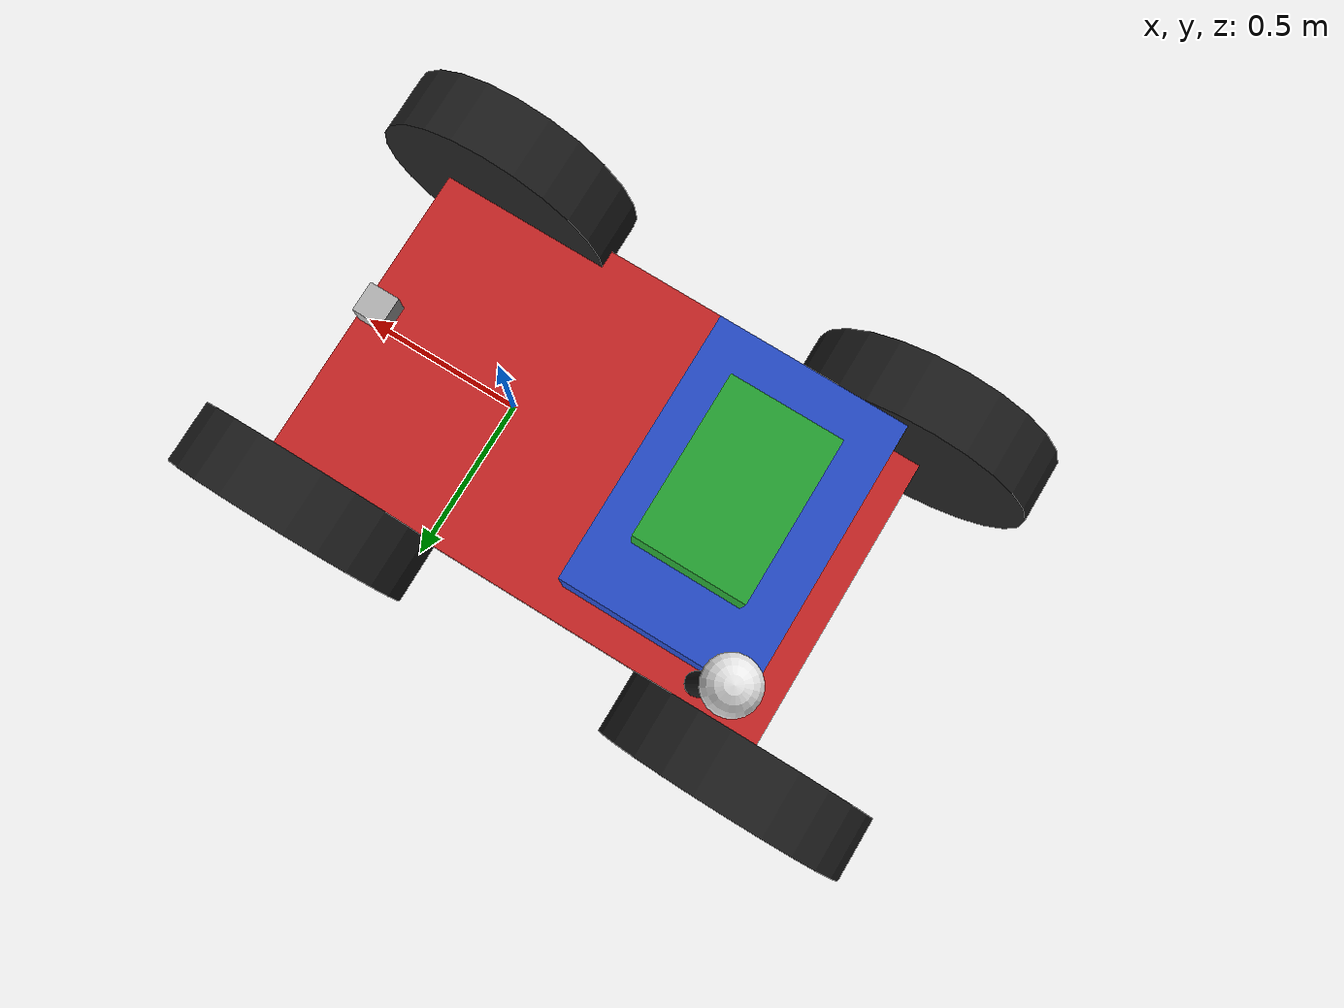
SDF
<?xml version='1.0'?>
<sdf version='1.6'>
  <model name='Bot'>
    <model name='camera'>
      <pose frame=''>0.522675 -0.053144 -0.080631 0 -0 0</pose>
      <link name='link'>
        <inertial>
          <mass>0.1</mass>
          <inertia>
            <ixx>0.000166667</ixx>
            <iyy>0.000166667</iyy>
            <izz>0.000166667</izz>
            <ixy>0</ixy>
            <ixz>0</ixz>
            <iyz>0</iyz>
          </inertia>
        </inertial>
        <collision name='collision'>
          <geometry>
            <box>
              <size>0.1 0.1 0.1</size>
            </box>
          </geometry>
        </collision>
        <visual name='visual'>
          <geometry>
            <box>
              <size>0.1 0.1 0.1</size>
            </box>
          </geometry>
        </visual>
        <sensor name='camera' type='camera'>
          <camera name='__default__'>
            <horizontal_fov>1.047</horizontal_fov>
            <image>
              <width>320</width>
              <height>120</height>
            </image>
            <clip>
              <near>0.1</near>
              <far>100</far>
            </clip>
          </camera>
          <always_on>1</always_on>
          <update_rate>30</update_rate>
          <visualize>1</visualize>
        </sensor>
      </link>
    </model>
    <model name='car2'>
      <link name='link_0'>
        <gravity>1</gravity>
        <inertial>
          <mass>0.162312</mass>
          <inertia>
            <ixx>0.0151354</ixx>
            <ixy>0</ixy>
            <ixz>0</ixz>
            <iyy>0.0388686</iyy>
            <iyz>0</iyz>
            <izz>0.0537799</izz>
          </inertia>
          <pose frame=''>0 0 0 0 -0 0</pose>
        </inertial>
        <pose frame=''>0.259006 -0.115798 -0.260009 0 -0 0</pose>
        <visual name='visual'>
        <gravity>1</gravity>
          <pose frame=''>0 0 0 0 -0 0</pose>
          <geometry>
            <box>
              <size>1.69273 1.0539 0.091003</size>
            </box>
          </geometry>
          <material>
            <lighting>1</lighting>
            <script>
              <uri>file://media/materials/scripts/gazebo.material</uri>
              <name>Gazebo/Red</name>
            </script>
            <emissive>0 0 0 1</emissive>
          </material>
          <transparency>0</transparency>
          <cast_shadows>1</cast_shadows>
        </visual>
        <collision name='collision'>
          <laser_retro>0</laser_retro>
          <max_contacts>10</max_contacts>
          <pose frame=''>0 0 0 0 -0 0</pose>
          <geometry>
            <box>
              <size>1.69273 1.0539 0.091003</size>
            </box>
          </geometry>
          <surface>
            <friction>
              <ode>
                <mu>1</mu>
                <mu2>1</mu2>
                <fdir1>0 0 -1</fdir1>
                <slip1>0</slip1>
                <slip2>0</slip2>
              </ode>
              <torsional>
                <coefficient>1</coefficient>
                <patch_radius>0</patch_radius>
                <surface_radius>0</surface_radius>
                <use_patch_radius>1</use_patch_radius>
                <ode>
                  <slip>1</slip>
                </ode>
              </torsional>
            </friction>
            <bounce>
              <restitution_coefficient>0</restitution_coefficient>
              <threshold>1e+06</threshold>
            </bounce>
            <contact>
              <collide_without_contact>0</collide_without_contact>
              <collide_without_contact_bitmask>1</collide_without_contact_bitmask>
              <collide_bitmask>1</collide_bitmask>
              <ode>
                <soft_cfm>0</soft_cfm>
                <soft_erp>0.2</soft_erp>
                <kp>1e+13</kp>
                <kd>1</kd>
                <max_vel>0.01</max_vel>
                <min_depth>0</min_depth>
              </ode>
              <bullet>
                <split_impulse>1</split_impulse>
                <split_impulse_penetration_threshold>-0.01</split_impulse_penetration_threshold>
                <soft_cfm>0</soft_cfm>
                <soft_erp>0.2</soft_erp>
                <kp>1e+13</kp>
                <kd>1</kd>
              </bullet>
            </contact>
          </surface>
        </collision>
      </link>
      <link name='link_1'>
        <gravity>1</gravity>
        <inertial>
          <mass>0.0319905</mass>
          <inertia>
            <ixx>0.000773863</ixx>
            <ixy>0</ixy>
            <ixz>0</ixz>
            <iyy>0.000406624</iyy>
            <iyz>0</iyz>
            <izz>0.00100223</izz>
          </inertia>
          <pose frame=''>0 0 0 0 -0 0</pose>
        </inertial>
        <pose frame=''>-0.154989 -0.129185 0.177071 0 -0 0</pose>
        <visual name='visual'>
         <gravity>1</gravity>
          <pose frame=''>0 0 0 0 -0 0</pose>
          <geometry>
            <box>
              <size>0.345102 0.506805 0.18285</size>
            </box>
          </geometry>
          <material>
            <lighting>1</lighting>
            <script>
              <uri>file://media/materials/scripts/gazebo.material</uri>
              <name>Gazebo/Green</name>
            </script>
            <emissive>0 0 0 1</emissive>
          </material>
          <transparency>0</transparency>
          <cast_shadows>1</cast_shadows>
        </visual>
        <collision name='collision'>
          <laser_retro>0</laser_retro>
          <max_contacts>10</max_contacts>
          <pose frame=''>0 0 0 0 -0 0</pose>
          <geometry>
            <box>
              <size>0.345102 0.506805 0.18285</size>
            </box>
          </geometry>
          <surface>
            <friction>
              <ode>
                <mu>1</mu>
                <mu2>1</mu2>
                <fdir1>0 0 -1</fdir1>
                <slip1>0</slip1>
                <slip2>0</slip2>
              </ode>
              <torsional>
                <coefficient>1</coefficient>
                <patch_radius>0</patch_radius>
                <surface_radius>0</surface_radius>
                <use_patch_radius>1</use_patch_radius>
                <ode>
                  <slip>1</slip>
                </ode>
              </torsional>
            </friction>
            <bounce>
              <restitution_coefficient>0</restitution_coefficient>
              <threshold>1e+06</threshold>
            </bounce>
            <contact>
              <collide_without_contact>0</collide_without_contact>
              <collide_without_contact_bitmask>1</collide_without_contact_bitmask>
              <collide_bitmask>1</collide_bitmask>
              <ode>
                <soft_cfm>0</soft_cfm>
                <soft_erp>0.2</soft_erp>
                <kp>1e+13</kp>
                <kd>1</kd>
                <max_vel>0.01</max_vel>
                <min_depth>0</min_depth>
              </ode>
              <bullet>
                <split_impulse>1</split_impulse>
                <split_impulse_penetration_threshold>-0.01</split_impulse_penetration_threshold>
                <soft_cfm>0</soft_cfm>
                <soft_erp>0.2</soft_erp>
                <kp>1e+13</kp>
                <kd>1</kd>
              </bullet>
            </contact>
          </surface>
        </collision>
      </link>
      <link name='link_1_clone'>
        <gravity>1</gravity>
        <inertial>
          <mass>0.164928</mass>
          <inertia>
            <ixx>0.0116265</ixx>
            <ixy>0</ixy>
            <ixz>0</ixz>
            <iyy>0.00637703</iyy>
            <iyz>0</iyz>
            <izz>0.0152459</izz>
          </inertia>
          <pose frame=''>0 0 0 0 -0 0</pose>
        </inertial>
        <pose frame=''>-0.167005 -0.120771 -0.058764 0 -0 0</pose>
        <visual name='visual'>
          <gravity>1</gravity>
         <pose frame=''>0 0 0 0 -0 0</pose>
          <geometry>
            <box>
              <size>0.603046 0.863485 0.316735</size>
            </box>
          </geometry>
          <material>
            <lighting>1</lighting>
            <script>
              <uri>file://media/materials/scripts/gazebo.material</uri>
              <name>Gazebo/Blue</name>
            </script>
            <shader type='pixel'/>
            <emissive>0 0 0 1</emissive>
          </material>
          <transparency>0</transparency>
          <cast_shadows>1</cast_shadows>
        </visual>
        <collision name='collision'>
          <laser_retro>0</laser_retro>
          <max_contacts>10</max_contacts>
          <pose frame=''>0 0 0 0 -0 0</pose>
          <geometry>
            <box>
              <size>0.603046 0.863485 0.316735</size>
            </box>
          </geometry>
          <surface>
            <friction>
              <ode>
                <mu>1</mu>
                <mu2>1</mu2>
                <fdir1>0 0 -1</fdir1>
                <slip1>0</slip1>
                <slip2>0</slip2>
              </ode>
              <torsional>
                <coefficient>1</coefficient>
                <patch_radius>0</patch_radius>
                <surface_radius>0</surface_radius>
                <use_patch_radius>1</use_patch_radius>
                <ode>
                  <slip>1</slip>
                </ode>
              </torsional>
            </friction>
            <bounce>
              <restitution_coefficient>0</restitution_coefficient>
              <threshold>1e+06</threshold>
            </bounce>
            <contact>
              <collide_without_contact>0</collide_without_contact>
              <collide_without_contact_bitmask>1</collide_without_contact_bitmask>
              <collide_bitmask>1</collide_bitmask>
              <ode>
                <soft_cfm>0</soft_cfm>
                <soft_erp>0.2</soft_erp>
                <kp>1e+13</kp>
                <kd>1</kd>
                <max_vel>0.01</max_vel>
                <min_depth>0</min_depth>
              </ode>
              <bullet>
                <split_impulse>1</split_impulse>
                <split_impulse_penetration_threshold>-0.01</split_impulse_penetration_threshold>
                <soft_cfm>0</soft_cfm>
                <soft_erp>0.2</soft_erp>
                <kp>1e+13</kp>
                <kd>1</kd>
              </bullet>
            </contact>
          </surface>
        </collision>
      </link>
      <link name='link_2'>
        <gravity>1</gravity>
        <inertial>
          <mass>0.0057314</mass>
          <inertia>
            <ixx>0.000479669</ixx>
            <ixy>0</ixy>
            <ixz>0</ixz>
            <iyy>0.000479669</iyy>
            <iyz>0</iyz>
            <izz>4.10544e-06</izz>
          </inertia>
          <pose frame=''>0 0 0 0 -0 0</pose>
        </inertial>
        <pose frame=''>-0.349527 0.34797 0.291513 0 -0 0</pose>
        <visual name='visual'>
         <gravity>1</gravity>
         <pose frame=''>0 0 0 0 -0 0</pose>
          <geometry>
            <cylinder>
              <radius>0.0378499</radius>
              <length>1</length>
            </cylinder>
          </geometry>
          <material>
            <lighting>1</lighting>
            <script>
              <uri>file://media/materials/scripts/gazebo.material</uri>
              <name>Gazebo/Black</name>
            </script>
            <emissive>0 0 0 1</emissive>
          </material>
          <transparency>0</transparency>
          <cast_shadows>1</cast_shadows>
        </visual>
        <collision name='collision'>
          <laser_retro>0</laser_retro>
          <max_contacts>10</max_contacts>
          <pose frame=''>0 0 0 0 -0 0</pose>
          <geometry>
            <cylinder>
              <radius>0.03785</radius>
              <length>1</length>
            </cylinder>
          </geometry>
          <surface>
            <friction>
              <ode>
                <mu>1</mu>
                <mu2>1</mu2>
                <fdir1>0 0 -1</fdir1>
                <slip1>0</slip1>
                <slip2>0</slip2>
              </ode>
              <torsional>
                <coefficient>1</coefficient>
                <patch_radius>0</patch_radius>
                <surface_radius>0</surface_radius>
                <use_patch_radius>1</use_patch_radius>
                <ode>
                  <slip>1</slip>
                </ode>
              </torsional>
            </friction>
            <bounce>
              <restitution_coefficient>0</restitution_coefficient>
              <threshold>1e+06</threshold>
            </bounce>
            <contact>
              <collide_without_contact>0</collide_without_contact>
              <collide_without_contact_bitmask>1</collide_without_contact_bitmask>
              <collide_bitmask>1</collide_bitmask>
              <ode>
                <soft_cfm>0</soft_cfm>
                <soft_erp>0.2</soft_erp>
                <kp>1e+13</kp>
                <kd>1</kd>
                <max_vel>0.01</max_vel>
                <min_depth>0</min_depth>
              </ode>
              <bullet>
                <split_impulse>1</split_impulse>
                <split_impulse_penetration_threshold>-0.01</split_impulse_penetration_threshold>
                <soft_cfm>0</soft_cfm>
                <soft_erp>0.2</soft_erp>
                <kp>1e+13</kp>
                <kd>1</kd>
              </bullet>
            </contact>
          </surface>
        </collision>
      </link>
      <link name='link_3'>
        <gravity>1</gravity>
        <inertial>
          <mass>0.00281686</mass>
          <inertia>
            <ixx>5.61915e-06</ixx>
            <ixy>0</ixy>
            <ixz>0</ixz>
            <iyy>5.61915e-06</iyy>
            <iyz>0</iyz>
            <izz>5.61915e-06</izz>
          </inertia>
          <pose frame=''>0 0 0 0 -0 0</pose>
        </inertial>
        <pose frame=''>-0.353746 0.343871 0.849548 0 -0 0</pose>
        <visual name='visual'>
          <gravity>1</gravity>
       <pose frame=''>0 0 0 0 -0 0</pose>
          <geometry>
            <sphere>
              <radius>0.0706192</radius>
            </sphere>
          </geometry>
          <material>
            <lighting>1</lighting>
            <script>
              <uri>file://media/materials/scripts/gazebo.material</uri>
              <name>Gazebo/White</name>
            </script>
            <emissive>0 0 0 1</emissive>
          </material>
          <transparency>0</transparency>
          <cast_shadows>1</cast_shadows>
        </visual>
        <collision name='collision'>
          <laser_retro>0</laser_retro>
          <max_contacts>10</max_contacts>
          <pose frame=''>0 0 0 0 -0 0</pose>
          <geometry>
            <sphere>
              <radius>0.070619</radius>
            </sphere>
          </geometry>
          <surface>
            <friction>
              <ode>
                <mu>1</mu>
                <mu2>1</mu2>
                <fdir1>0 0 -1</fdir1>
                <slip1>0</slip1>
                <slip2>0</slip2>
              </ode>
              <torsional>
                <coefficient>1</coefficient>
                <patch_radius>0</patch_radius>
                <surface_radius>0</surface_radius>
                <use_patch_radius>1</use_patch_radius>
                <ode>
                  <slip>1</slip>
                </ode>
              </torsional>
            </friction>
            <bounce>
              <restitution_coefficient>0</restitution_coefficient>
              <threshold>1e+06</threshold>
            </bounce>
            <contact>
              <collide_without_contact>0</collide_without_contact>
              <collide_without_contact_bitmask>1</collide_without_contact_bitmask>
              <collide_bitmask>1</collide_bitmask>
              <ode>
                <soft_cfm>0</soft_cfm>
                <soft_erp>0.2</soft_erp>
                <kp>1e+13</kp>
                <kd>1</kd>
                <max_vel>0.01</max_vel>
                <min_depth>0</min_depth>
              </ode>
              <bullet>
                <split_impulse>1</split_impulse>
                <split_impulse_penetration_threshold>-0.01</split_impulse_penetration_threshold>
                <soft_cfm>0</soft_cfm>
                <soft_erp>0.2</soft_erp>
                <kp>1e+13</kp>
                <kd>1</kd>
              </bullet>
            </contact>
          </surface>
        </collision>
      </link>
      <link name='link_4'>
        <gravity>1</gravity>
        <inertial>
          <mass>0.129027</mass>
          <inertia>
            <ixx>0.00561779</ixx>
            <ixy>0</ixy>
            <ixz>0</ixz>
            <iyy>0.00561779</iyy>
            <iyz>0</iyz>
            <izz>0.0103694</izz>
          </inertia>
          <pose frame=''>0 0 0 0 -0 0</pose>
        </inertial>
        <pose frame=''>0.932225 0.502516 -0.251887 -1.57327 0 0</pose>
        <visual name='visual'>
         <gravity>1</gravity>
         <pose frame=''>0 0 0 0 -0 0</pose>
          <geometry>
            <cylinder>
              <radius>0.400915</radius>
              <length>0.200691</length>
            </cylinder>
          </geometry>
          <material>
            <lighting>1</lighting>
            <script>
              <uri>file://media/materials/scripts/gazebo.material</uri>
              <name>Gazebo/Black</name>
            </script>
            <emissive>0 0 0 1</emissive>
          </material>
          <transparency>0</transparency>
          <cast_shadows>1</cast_shadows>
        </visual>
        <collision name='collision'>
          <laser_retro>0</laser_retro>
          <max_contacts>10</max_contacts>
          <pose frame=''>0 0 0 0 -0 0</pose>
          <geometry>
            <cylinder>
              <radius>0.400915</radius>
              <length>0.200691</length>
            </cylinder>
          </geometry>
          <surface>
            <friction>
              <ode>
                <mu>1</mu>
                <mu2>1</mu2>
                <fdir1>0 0 -1</fdir1>
                <slip1>0</slip1>
                <slip2>0</slip2>
              </ode>
              <torsional>
                <coefficient>1</coefficient>
                <patch_radius>0</patch_radius>
                <surface_radius>0</surface_radius>
                <use_patch_radius>1</use_patch_radius>
                <ode>
                  <slip>1</slip>
                </ode>
              </torsional>
            </friction>
            <bounce>
              <restitution_coefficient>0</restitution_coefficient>
              <threshold>1e+06</threshold>
            </bounce>
            <contact>
              <collide_without_contact>0</collide_without_contact>
              <collide_without_contact_bitmask>1</collide_without_contact_bitmask>
              <collide_bitmask>1</collide_bitmask>
              <ode>
                <soft_cfm>0</soft_cfm>
                <soft_erp>0.2</soft_erp>
                <kp>1e+13</kp>
                <kd>1</kd>
                <max_vel>0.01</max_vel>
                <min_depth>0</min_depth>
              </ode>
              <bullet>
                <split_impulse>1</split_impulse>
                <split_impulse_penetration_threshold>-0.01</split_impulse_penetration_threshold>
                <soft_cfm>0</soft_cfm>
                <soft_erp>0.2</soft_erp>
                <kp>1e+13</kp>
                <kd>1</kd>
              </bullet>
            </contact>
          </surface>
        </collision>
      </link>
      <link name='link_4_clone'>
        <gravity>1</gravity>
        <inertial>
          <mass>0.129027</mass>
          <inertia>
            <ixx>0.00561779</ixx>
            <ixy>0</ixy>
            <ixz>0</ixz>
            <iyy>0.00561779</iyy>
            <iyz>0</iyz>
            <izz>0.0103694</izz>
          </inertia>
          <pose frame=''>0 0 0 0 -0 0</pose>
        </inertial>
        <pose frame=''>0.944393 -0.685196 -0.248915 -1.57327 0 0</pose>
        <visual name='visual'>
   <gravity>1</gravity>
          <pose frame=''>0 0 0 0 -0 0</pose>
          <geometry>
            <cylinder>
              <radius>0.400915</radius>
              <length>0.200691</length>
            </cylinder>
          </geometry>
          <material>
            <lighting>1</lighting>
            <script>
              <uri>file://media/materials/scripts/gazebo.material</uri>
              <name>Gazebo/Black</name>
            </script>
            <emissive>0 0 0 1</emissive>
            <shader type='pixel'/>
          </material>
          <transparency>0</transparency>
          <cast_shadows>1</cast_shadows>
        </visual>
        <collision name='collision'>
          <laser_retro>0</laser_retro>
          <max_contacts>10</max_contacts>
          <pose frame=''>0 0 0 0 -0 0</pose>
          <geometry>
            <cylinder>
              <radius>0.400915</radius>
              <length>0.200691</length>
            </cylinder>
          </geometry>
          <surface>
            <friction>
              <ode>
                <mu>1</mu>
                <mu2>1</mu2>
                <fdir1>0 0 -1</fdir1>
                <slip1>0</slip1>
                <slip2>0</slip2>
              </ode>
              <torsional>
                <coefficient>1</coefficient>
                <patch_radius>0</patch_radius>
                <surface_radius>0</surface_radius>
                <use_patch_radius>1</use_patch_radius>
                <ode>
                  <slip>1</slip>
                </ode>
              </torsional>
            </friction>
            <bounce>
              <restitution_coefficient>0</restitution_coefficient>
              <threshold>1e+06</threshold>
            </bounce>
            <contact>
              <collide_without_contact>0</collide_without_contact>
              <collide_without_contact_bitmask>1</collide_without_contact_bitmask>
              <collide_bitmask>1</collide_bitmask>
              <ode>
                <soft_cfm>0</soft_cfm>
                <soft_erp>0.2</soft_erp>
                <kp>1e+13</kp>
                <kd>1</kd>
                <max_vel>0.01</max_vel>
                <min_depth>0</min_depth>
              </ode>
              <bullet>
                <split_impulse>1</split_impulse>
                <split_impulse_penetration_threshold>-0.01</split_impulse_penetration_threshold>
                <soft_cfm>0</soft_cfm>
                <soft_erp>0.2</soft_erp>
                <kp>1e+13</kp>
                <kd>1</kd>
              </bullet>
            </contact>
          </surface>
        </collision>
      </link>
      <link name='link_4_clone_0'>
        <gravity>1</gravity>
        <inertial>
          <mass>0.129027</mass>
          <inertia>
            <ixx>0.00561779</ixx>
            <ixy>0</ixy>
            <ixz>0</ixz>
            <iyy>0.00561779</iyy>
            <iyz>0</iyz>
            <izz>0.0103694</izz>
          </inertia>
          <pose frame=''>0 0 0 0 -0 0</pose>
        </inertial>
        <pose frame=''>-0.534843 -0.6554 -0.24665 -1.57327 0 0</pose>
        <visual name='visual'>
   <gravity>1</gravity>
          <pose frame=''>0 0 0 0 -0 0</pose>
          <geometry>
            <cylinder>
              <radius>0.400915</radius>
              <length>0.200691</length>
            </cylinder>
          </geometry>
          <material>
            <lighting>1</lighting>
            <script>
              <uri>file://media/materials/scripts/gazebo.material</uri>
              <name>Gazebo/Black</name>
            </script>
            <emissive>0 0 0 1</emissive>
            <shader type='pixel'/>
          </material>
          <transparency>0</transparency>
          <cast_shadows>1</cast_shadows>
        </visual>
        <collision name='collision'>
          <laser_retro>0</laser_retro>
          <max_contacts>10</max_contacts>
          <pose frame=''>0 0 0 0 -0 0</pose>
          <geometry>
            <cylinder>
              <radius>0.400915</radius>
              <length>0.200691</length>
            </cylinder>
          </geometry>
          <surface>
            <friction>
              <ode>
                <mu>1</mu>
                <mu2>1</mu2>
                <fdir1>0 0 -1</fdir1>
                <slip1>0</slip1>
                <slip2>0</slip2>
              </ode>
              <torsional>
                <coefficient>1</coefficient>
                <patch_radius>0</patch_radius>
                <surface_radius>0</surface_radius>
                <use_patch_radius>1</use_patch_radius>
                <ode>
                  <slip>1</slip>
                </ode>
              </torsional>
            </friction>
            <bounce>
              <restitution_coefficient>0</restitution_coefficient>
              <threshold>1e+06</threshold>
            </bounce>
            <contact>
              <collide_without_contact>0</collide_without_contact>
              <collide_without_contact_bitmask>1</collide_without_contact_bitmask>
              <collide_bitmask>1</collide_bitmask>
              <ode>
                <soft_cfm>0</soft_cfm>
                <soft_erp>0.2</soft_erp>
                <kp>1e+13</kp>
                <kd>1</kd>
                <max_vel>0.01</max_vel>
                <min_depth>0</min_depth>
              </ode>
              <bullet>
                <split_impulse>1</split_impulse>
                <split_impulse_penetration_threshold>-0.01</split_impulse_penetration_threshold>
                <soft_cfm>0</soft_cfm>
                <soft_erp>0.2</soft_erp>
                <kp>1e+13</kp>
                <kd>1</kd>
              </bullet>
            </contact>
          </surface>
        </collision>
      </link>
      <link name='link_4_clone_0_clone'>
        <gravity>1</gravity>
        <inertial>
          <mass>0.129027</mass>
          <inertia>
            <ixx>0.00561779</ixx>
            <ixy>0</ixy>
            <ixz>0</ixz>
            <iyy>0.00561779</iyy>
            <iyz>0</iyz>
            <izz>0.0103694</izz>
          </inertia>
          <pose frame=''>0 0 0 0 -0 0</pose>
        </inertial>
        <pose frame=''>-0.575517 0.511993 -0.251908 -1.57327 0 0</pose>
        <visual name='visual'>
         <gravity>1</gravity>
          <pose frame=''>0 0 0 0 -0 0</pose>
          <geometry>
            <cylinder>
              <radius>0.400915</radius>
              <length>0.200691</length>
            </cylinder>
          </geometry>
          <material>
            <lighting>1</lighting>
            <script>
              <uri>file://media/materials/scripts/gazebo.material</uri>
              <name>Gazebo/Black</name>
            </script>
            <emissive>0 0 0 1</emissive>
            <shader type='pixel'/>
          </material>
          <transparency>0</transparency>
          <cast_shadows>1</cast_shadows>
        </visual>
        <collision name='collision'>
          <laser_retro>0</laser_retro>
          <max_contacts>10</max_contacts>
          <pose frame=''>0 0 0 0 -0 0</pose>
          <geometry>
            <cylinder>
              <radius>0.400915</radius>
              <length>0.200691</length>
            </cylinder>
          </geometry>
          <surface>
            <friction>
              <ode>
                <mu>1</mu>
                <mu2>1</mu2>
                <fdir1>0 0 -1</fdir1>
                <slip1>0</slip1>
                <slip2>0</slip2>
              </ode>
              <torsional>
                <coefficient>1</coefficient>
                <patch_radius>0</patch_radius>
                <surface_radius>0</surface_radius>
                <use_patch_radius>1</use_patch_radius>
                <ode>
                  <slip>1</slip>
                </ode>
              </torsional>
            </friction>
            <bounce>
              <restitution_coefficient>0</restitution_coefficient>
              <threshold>1e+06</threshold>
            </bounce>
            <contact>
              <collide_without_contact>0</collide_without_contact>
              <collide_without_contact_bitmask>1</collide_without_contact_bitmask>
              <collide_bitmask>1</collide_bitmask>
              <ode>
                <soft_cfm>0</soft_cfm>
                <soft_erp>0.2</soft_erp>
                <kp>1e+13</kp>
                <kd>1</kd>
                <max_vel>0.01</max_vel>
                <min_depth>0</min_depth>
              </ode>
              <bullet>
                <split_impulse>1</split_impulse>
                <split_impulse_penetration_threshold>-0.01</split_impulse_penetration_threshold>
                <soft_cfm>0</soft_cfm>
                <soft_erp>0.2</soft_erp>
                <kp>1e+13</kp>
                <kd>1</kd>
              </bullet>
            </contact>
          </surface>
        </collision>
      </link>
      <joint name='link_0_JOINT_0' type='fixed'>
        <parent>link_0</parent>
        <child>link_1_clone</child>
        <pose frame=''>0 0 0 0 -0 0</pose>
        <physics>
          <ode>
            <limit>
              <cfm>0</cfm>
              <erp>0.2</erp>
            </limit>
            <suspension>
              <cfm>0</cfm>
              <erp>0.2</erp>
            </suspension>
          </ode>
        </physics>
      </joint>
      <joint name='link_0_JOINT_2' type='fixed'>
        <parent>link_0</parent>
        <child>link_2</child>
        <pose frame=''>0 0 0 0 -0 0</pose>
        <physics>
          <ode>
            <limit>
              <cfm>0</cfm>
              <erp>0.2</erp>
            </limit>
            <suspension>
              <cfm>0</cfm>
              <erp>0.2</erp>
            </suspension>
          </ode>
        </physics>
      </joint>
      <joint name='link_0_JOINT_4' type='revolute'>
        <parent>link_0</parent>
        <child>link_4</child>
        <pose frame=''>0 0 0 0 -0 0</pose>
        <axis>
          <xyz>0 0 1</xyz>
          <use_parent_model_frame>0</use_parent_model_frame>
          <limit>
            <lower>-1.79769e+308</lower>
            <upper>1.79769e+308</upper>
            <effort>-1</effort>
            <velocity>-1</velocity>
          </limit>
          <dynamics>
            <spring_reference>0</spring_reference>
            <spring_stiffness>0</spring_stiffness>
            <damping>0</damping>
          </dynamics>
        </axis>
        <physics>
          <ode>
            <limit>
              <cfm>0</cfm>
              <erp>0.2</erp>
            </limit>
            <suspension>
              <cfm>0</cfm>
              <erp>0.2</erp>
            </suspension>
          </ode>
        </physics>
      </joint>
      <joint name='link_0_JOINT_5' type='revolute'>
        <parent>link_0</parent>
        <child>link_4_clone</child>
        <pose frame=''>0 0 0 0 -0 0</pose>
        <axis>
          <xyz>0 0 1</xyz>
          <use_parent_model_frame>0</use_parent_model_frame>
          <limit>
            <lower>-1.79769e+308</lower>
            <upper>1.79769e+308</upper>
            <effort>-1</effort>
            <velocity>-1</velocity>
          </limit>
          <dynamics>
            <spring_reference>0</spring_reference>
            <spring_stiffness>0</spring_stiffness>
            <damping>0</damping>
          </dynamics>
        </axis>
        <physics>
          <ode>
            <limit>
              <cfm>0</cfm>
              <erp>0.2</erp>
            </limit>
            <suspension>
              <cfm>0</cfm>
              <erp>0.2</erp>
            </suspension>
          </ode>
        </physics>
      </joint>
      <joint name='link_0_JOINT_6' type='revolute'>
        <parent>link_0</parent>
        <child>link_4_clone_0_clone</child>
        <pose frame=''>0 0 0 0 -0 0</pose>
        <axis>
          <xyz>0 0 1</xyz>
          <use_parent_model_frame>0</use_parent_model_frame>
          <limit>
            <lower>-1.79769e+308</lower>
            <upper>1.79769e+308</upper>
            <effort>-1</effort>
            <velocity>-1</velocity>
          </limit>
          <dynamics>
            <spring_reference>0</spring_reference>
            <spring_stiffness>0</spring_stiffness>
            <damping>0</damping>
          </dynamics>
        </axis>
        <physics>
          <ode>
            <limit>
              <cfm>0</cfm>
              <erp>0.2</erp>
            </limit>
            <suspension>
              <cfm>0</cfm>
              <erp>0.2</erp>
            </suspension>
          </ode>
        </physics>
      </joint>
      <joint name='link_0_JOINT_7' type='revolute'>
        <parent>link_0</parent>
        <child>link_4_clone_0</child>
        <pose frame=''>0 0 0 0 -0 0</pose>
        <axis>
          <xyz>0 0 1</xyz>
          <use_parent_model_frame>0</use_parent_model_frame>
          <limit>
            <lower>-1.79769e+308</lower>
            <upper>1.79769e+308</upper>
            <effort>-1</effort>
            <velocity>-1</velocity>
          </limit>
          <dynamics>
            <spring_reference>0</spring_reference>
            <spring_stiffness>0</spring_stiffness>
            <damping>0</damping>
          </dynamics>
        </axis>
        <physics>
          <ode>
            <limit>
              <cfm>0</cfm>
              <erp>0.2</erp>
            </limit>
            <suspension>
              <cfm>0</cfm>
              <erp>0.2</erp>
            </suspension>
          </ode>
        </physics>
      </joint>
      <joint name='link_1_clone_JOINT_1' type='fixed'>
        <parent>link_1_clone</parent>
        <child>link_1</child>
        <pose frame=''>0 0 0 0 -0 0</pose>
        <physics>
          <ode>
            <limit>
              <cfm>0</cfm>
              <erp>0.2</erp>
            </limit>
            <suspension>
              <cfm>0</cfm>
              <erp>0.2</erp>
            </suspension>
          </ode>
        </physics>
      </joint>
      <joint name='link_3_JOINT_3' type='fixed'>
        <parent>link_3</parent>
        <child>link_2</child>
        <pose frame=''>0 0 0 0 -0 0</pose>
        <physics>
          <ode>
            <limit>
              <cfm>0</cfm>
              <erp>0.2</erp>
            </limit>
            <suspension>
              <cfm>0</cfm>
              <erp>0.2</erp>
            </suspension>
          </ode>
        </physics>
      </joint>
      <static>0</static>
      <allow_auto_disable>1</allow_auto_disable>
      <pose frame=''>-0.522671 0.05314 0.080631 0 -0 0</pose>
    </model>
    <joint name='link_JOINT_3' type='revolute'>
      <parent>camera::link</parent>
      <child>car2::link_4</child>
      <pose frame=''>0 0 0 0 -0 0</pose>
      <axis>
        <xyz>0 0 1</xyz>
        <use_parent_model_frame>0</use_parent_model_frame>
        <limit>
          <lower>-1.79769e+308</lower>
          <upper>1.79769e+308</upper>
          <effort>-1</effort>
          <velocity>-1</velocity>
        </limit>
        <dynamics>
          <spring_reference>0</spring_reference>
          <spring_stiffness>0</spring_stiffness>
          <damping>0</damping>
        </dynamics>
      </axis>
      <physics>
        <ode>
          <limit>
            <cfm>0</cfm>
            <erp>0.2</erp>
          </limit>
          <suspension>
            <cfm>0</cfm>
            <erp>0.2</erp>
          </suspension>
        </ode>
      </physics>
    </joint>
    <joint name='link_JOINT_4' type='revolute'>
      <parent>camera::link</parent>
      <child>car2::link_4_clone_0_clone</child>
      <pose frame=''>0 0 0 0 -0 0</pose>
      <axis>
        <xyz>0 0 1</xyz>
        <use_parent_model_frame>0</use_parent_model_frame>
        <limit>
          <lower>-1.79769e+308</lower>
          <upper>1.79769e+308</upper>
          <effort>-1</effort>
          <velocity>-1</velocity>
        </limit>
        <dynamics>
          <spring_reference>0</spring_reference>
          <spring_stiffness>0</spring_stiffness>
          <damping>0</damping>
        </dynamics>
      </axis>
      <physics>
        <ode>
          <limit>
            <cfm>0</cfm>
            <erp>0.2</erp>
          </limit>
          <suspension>
            <cfm>0</cfm>
            <erp>0.2</erp>
          </suspension>
        </ode>
      </physics>
    </joint>
    <joint name='link_JOINT_5' type='revolute'>
      <parent>camera::link</parent>
      <child>car2::link_4_clone</child>
      <pose frame=''>0 0 0 0 -0 0</pose>
      <axis>
        <xyz>0 0 1</xyz>
        <use_parent_model_frame>0</use_parent_model_frame>
        <limit>
          <lower>-1.79769e+308</lower>
          <upper>1.79769e+308</upper>
          <effort>-1</effort>
          <velocity>-1</velocity>
        </limit>
        <dynamics>
          <spring_reference>0</spring_reference>
          <spring_stiffness>0</spring_stiffness>
          <damping>0</damping>
        </dynamics>
      </axis>
      <physics>
        <ode>
          <limit>
            <cfm>0</cfm>
            <erp>0.2</erp>
          </limit>
          <suspension>
            <cfm>0</cfm>
            <erp>0.2</erp>
          </suspension>
        </ode>
      </physics>
    </joint>
    <joint name='link_JOINT_6' type='revolute'>
      <parent>camera::link</parent>
      <child>car2::link_4_clone_0</child>
      <pose frame=''>0 0 0 0 -0 0</pose>
      <axis>
        <xyz>0 0 1</xyz>
        <use_parent_model_frame>0</use_parent_model_frame>
        <limit>
          <lower>-1.79769e+308</lower>
          <upper>1.79769e+308</upper>
          <effort>-1</effort>
          <velocity>-1</velocity>
        </limit>
        <dynamics>
          <spring_reference>0</spring_reference>
          <spring_stiffness>0</spring_stiffness>
          <damping>0</damping>
        </dynamics>
      </axis>
      <physics>
        <ode>
          <limit>
            <cfm>0</cfm>
            <erp>0.2</erp>
          </limit>
          <suspension>
            <cfm>0</cfm>
            <erp>0.2</erp>
          </suspension>
        </ode>
      </physics>
    </joint>
    <joint name='link_0_JOINT_1' type='fixed'>
      <parent>car2::link_0</parent>
      <child>camera::link</child>
      <pose frame=''>0 0 0 0 -0 0</pose>
      <physics>
        <ode>
          <limit>
            <cfm>0</cfm>
            <erp>0.2</erp>
          </limit>
          <suspension>
            <cfm>0</cfm>
            <erp>0.2</erp>
          </suspension>
        </ode>
      </physics>
    </joint>
    <static>0</static>
    <allow_auto_disable>1</allow_auto_disable>
  </model>
</sdf>
